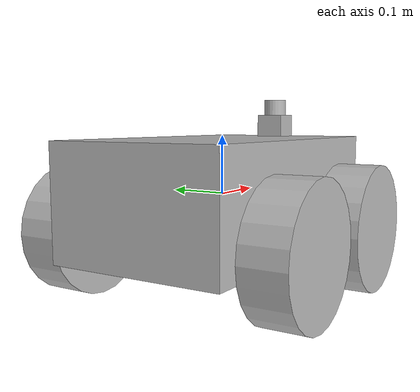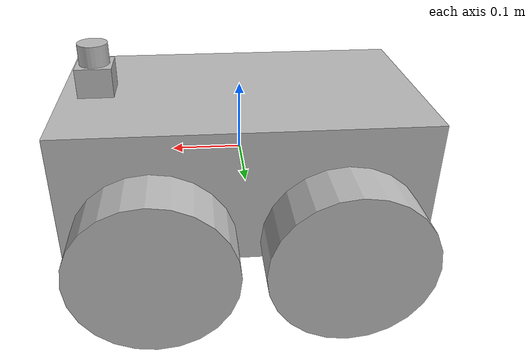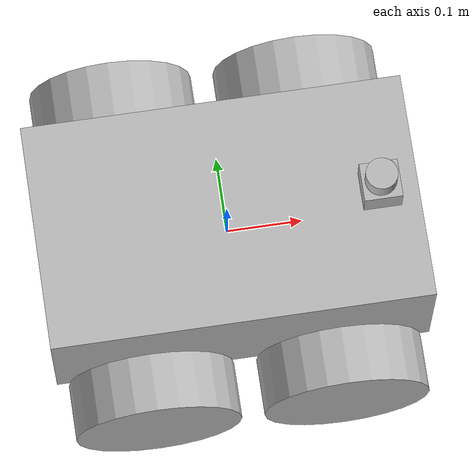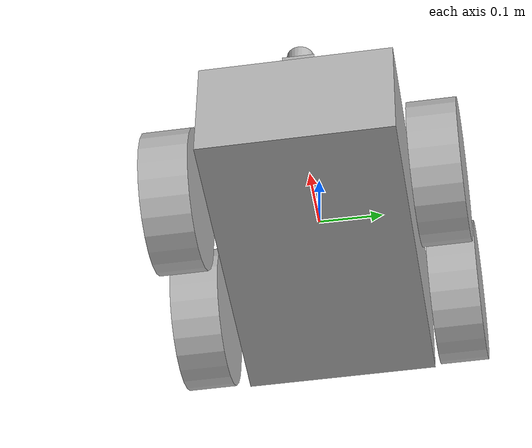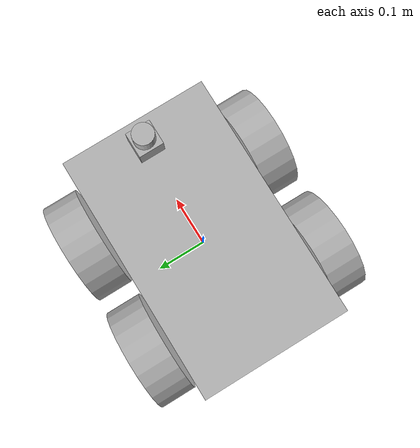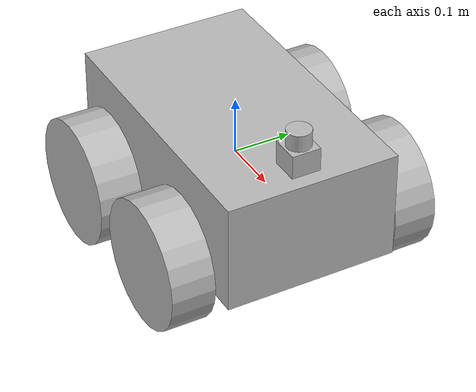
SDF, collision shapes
<?xml version='1.0'?>
<sdf version='1.6'>
  <model name='pioneer3at'>
    <link name='chassis'>
      <inertial>
        <mass>14</mass>
        <inertia>
          <ixx>0.147117</ixx>
          <ixy>0</ixy>
          <ixz>0</ixz>
          <iyy>0.334951</iyy>
          <iyz>0</iyz>
          <izz>0.397834</izz>
        </inertia>
      </inertial>
      <self_collide>0</self_collide>
      <enable_wind>0</enable_wind>
      <kinematic>0</kinematic>
      <pose frame=''>0 0 0 0 -0 0</pose>
      <visual name='visual'>
        <geometry>
          <mesh>
            <uri>model://pioneer3at/meshes/chassis.dae</uri>
          </mesh>
        </geometry>
        <pose frame=''>0 0 0 0 -0 0</pose>
        <transparency>0</transparency>
        <cast_shadows>1</cast_shadows>
      </visual>
      <collision name='collision'>
        <laser_retro>0</laser_retro>
        <max_contacts>10</max_contacts>
        <pose frame=''>0 0 0 0 -0 0</pose>
        <geometry>
          <box>
            <size>0.501 0.3 0.19</size>
          </box>
        </geometry>
        <surface>
          <friction>
            <ode>
              <mu>1</mu>
              <mu2>1</mu2>
              <fdir1>0 0 0</fdir1>
              <slip1>0</slip1>
              <slip2>0</slip2>
            </ode>
            <torsional>
              <coefficient>1</coefficient>
              <patch_radius>0</patch_radius>
              <surface_radius>0</surface_radius>
              <use_patch_radius>1</use_patch_radius>
              <ode>
                <slip>0</slip>
              </ode>
            </torsional>
          </friction>
          <bounce>
            <restitution_coefficient>0</restitution_coefficient>
            <threshold>1e+06</threshold>
          </bounce>
          <contact>
            <collide_without_contact>0</collide_without_contact>
            <collide_without_contact_bitmask>1</collide_without_contact_bitmask>
            <collide_bitmask>1</collide_bitmask>
            <ode>
              <soft_cfm>0</soft_cfm>
              <soft_erp>0.2</soft_erp>
              <kp>1e+13</kp>
              <kd>1</kd>
              <max_vel>0.01</max_vel>
              <min_depth>0</min_depth>
            </ode>
            <bullet>
              <split_impulse>1</split_impulse>
              <split_impulse_penetration_threshold>-0.01</split_impulse_penetration_threshold>
              <soft_cfm>0</soft_cfm>
              <soft_erp>0.2</soft_erp>
              <kp>1e+13</kp>
              <kd>1</kd>
            </bullet>
          </contact>
        </surface>
      </collision>
    </link>
    <link name='left_front_wheel'>
      <pose frame=''>0.125 0.201 -0.06 1.5707 -0 0</pose>
      <inertial>
        <mass>1.5</mass>
        <inertia>
          <ixx>0.00524062</ixx>
          <iyy>0.00524062</iyy>
          <izz>0.009075</izz>
          <ixy>0</ixy>
          <ixz>0</ixz>
          <iyz>0</iyz>
        </inertia>
      </inertial>
      <self_collide>0</self_collide>
      <enable_wind>0</enable_wind>
      <kinematic>0</kinematic>
      <visual name='visual'>
        <geometry>
          <mesh>
            <uri>model://pioneer3at/meshes/wheel.dae</uri>
          </mesh>
        </geometry>
        <pose frame=''>0 0 0 0 -0 0</pose>
        <transparency>0</transparency>
        <cast_shadows>1</cast_shadows>
      </visual>
      <collision name='collision'>
        <laser_retro>0</laser_retro>
        <max_contacts>10</max_contacts>
        <pose frame=''>0 0 0 0 -0 0</pose>
        <geometry>
          <cylinder>
            <radius>0.11</radius>
            <length>0.075</length>
          </cylinder>
        </geometry>
        <surface>
          <friction>
            <ode>
              <mu>1</mu>
              <mu2>1</mu2>
              <fdir1>0 0 0</fdir1>
              <slip1>0.5</slip1>
              <slip2>0</slip2>
            </ode>
            <torsional>
              <coefficient>1</coefficient>
              <patch_radius>0</patch_radius>
              <surface_radius>0</surface_radius>
              <use_patch_radius>1</use_patch_radius>
              <ode>
                <slip>0</slip>
              </ode>
            </torsional>
          </friction>
          <bounce>
            <restitution_coefficient>0</restitution_coefficient>
            <threshold>1e+06</threshold>
          </bounce>
          <contact>
            <collide_without_contact>0</collide_without_contact>
            <collide_without_contact_bitmask>1</collide_without_contact_bitmask>
            <collide_bitmask>1</collide_bitmask>
            <ode>
              <soft_cfm>0</soft_cfm>
              <soft_erp>0.2</soft_erp>
              <kp>1e+13</kp>
              <kd>1</kd>
              <max_vel>0.01</max_vel>
              <min_depth>0</min_depth>
            </ode>
            <bullet>
              <split_impulse>1</split_impulse>
              <split_impulse_penetration_threshold>-0.01</split_impulse_penetration_threshold>
              <soft_cfm>0</soft_cfm>
              <soft_erp>0.2</soft_erp>
              <kp>1e+13</kp>
              <kd>1</kd>
            </bullet>
          </contact>
        </surface>
      </collision>
    </link>
    <link name='left_rear_wheel'>
      <pose frame=''>-0.125 0.201 -0.06 1.5707 -0 0</pose>
      <inertial>
        <mass>1.5</mass>
        <inertia>
          <ixx>0.00524062</ixx>
          <iyy>0.00524062</iyy>
          <izz>0.009075</izz>
          <ixy>0</ixy>
          <ixz>0</ixz>
          <iyz>0</iyz>
        </inertia>
      </inertial>
      <self_collide>0</self_collide>
      <enable_wind>0</enable_wind>
      <kinematic>0</kinematic>
      <visual name='visual'>
        <geometry>
          <mesh>
            <uri>model://pioneer3at/meshes/wheel.dae</uri>
          </mesh>
        </geometry>
        <pose frame=''>0 0 0 0 -0 0</pose>
        <transparency>0</transparency>
        <cast_shadows>1</cast_shadows>
      </visual>
      <collision name='collision'>
        <laser_retro>0</laser_retro>
        <max_contacts>10</max_contacts>
        <pose frame=''>0 0 0 0 -0 0</pose>
        <geometry>
          <cylinder>
            <radius>0.11</radius>
            <length>0.075</length>
          </cylinder>
        </geometry>
        <surface>
          <friction>
            <ode>
              <mu>1</mu>
              <mu2>1</mu2>
              <fdir1>0 0 0</fdir1>
              <slip1>0.5</slip1>
              <slip2>0</slip2>
            </ode>
            <torsional>
              <coefficient>1</coefficient>
              <patch_radius>0</patch_radius>
              <surface_radius>0</surface_radius>
              <use_patch_radius>1</use_patch_radius>
              <ode>
                <slip>0</slip>
              </ode>
            </torsional>
          </friction>
          <bounce>
            <restitution_coefficient>0</restitution_coefficient>
            <threshold>1e+06</threshold>
          </bounce>
          <contact>
            <collide_without_contact>0</collide_without_contact>
            <collide_without_contact_bitmask>1</collide_without_contact_bitmask>
            <collide_bitmask>1</collide_bitmask>
            <ode>
              <soft_cfm>0</soft_cfm>
              <soft_erp>0.2</soft_erp>
              <kp>1e+13</kp>
              <kd>1</kd>
              <max_vel>0.01</max_vel>
              <min_depth>0</min_depth>
            </ode>
            <bullet>
              <split_impulse>1</split_impulse>
              <split_impulse_penetration_threshold>-0.01</split_impulse_penetration_threshold>
              <soft_cfm>0</soft_cfm>
              <soft_erp>0.2</soft_erp>
              <kp>1e+13</kp>
              <kd>1</kd>
            </bullet>
          </contact>
        </surface>
      </collision>
    </link>
    <link name='right_front_wheel'>
      <pose frame=''>0.125 -0.201 -0.06 1.5707 -0 0</pose>
      <inertial>
        <mass>1.5</mass>
        <inertia>
          <ixx>0.00524062</ixx>
          <iyy>0.00524062</iyy>
          <izz>0.009075</izz>
          <ixy>0</ixy>
          <ixz>0</ixz>
          <iyz>0</iyz>
        </inertia>
      </inertial>
      <self_collide>0</self_collide>
      <enable_wind>0</enable_wind>
      <kinematic>0</kinematic>
      <visual name='visual'>
        <geometry>
          <mesh>
            <uri>model://pioneer3at/meshes/wheel.dae</uri>
          </mesh>
        </geometry>
        <pose frame=''>0 0 0 0 -0 0</pose>
        <transparency>0</transparency>
        <cast_shadows>1</cast_shadows>
      </visual>
      <collision name='collision'>
        <laser_retro>0</laser_retro>
        <max_contacts>10</max_contacts>
        <pose frame=''>0 0 0 0 -0 0</pose>
        <geometry>
          <cylinder>
            <radius>0.11</radius>
            <length>0.075</length>
          </cylinder>
        </geometry>
        <surface>
          <friction>
            <ode>
              <mu>1</mu>
              <mu2>1</mu2>
              <fdir1>0 0 0</fdir1>
              <slip1>0.5</slip1>
              <slip2>0</slip2>
            </ode>
            <torsional>
              <coefficient>1</coefficient>
              <patch_radius>0</patch_radius>
              <surface_radius>0</surface_radius>
              <use_patch_radius>1</use_patch_radius>
              <ode>
                <slip>0</slip>
              </ode>
            </torsional>
          </friction>
          <bounce>
            <restitution_coefficient>0</restitution_coefficient>
            <threshold>1e+06</threshold>
          </bounce>
          <contact>
            <collide_without_contact>0</collide_without_contact>
            <collide_without_contact_bitmask>1</collide_without_contact_bitmask>
            <collide_bitmask>1</collide_bitmask>
            <ode>
              <soft_cfm>0</soft_cfm>
              <soft_erp>0.2</soft_erp>
              <kp>1e+13</kp>
              <kd>1</kd>
              <max_vel>0.01</max_vel>
              <min_depth>0</min_depth>
            </ode>
            <bullet>
              <split_impulse>1</split_impulse>
              <split_impulse_penetration_threshold>-0.01</split_impulse_penetration_threshold>
              <soft_cfm>0</soft_cfm>
              <soft_erp>0.2</soft_erp>
              <kp>1e+13</kp>
              <kd>1</kd>
            </bullet>
          </contact>
        </surface>
      </collision>
    </link>
    <link name='right_rear_wheel'>
      <pose frame=''>-0.125 -0.201 -0.06 1.5707 -0 0</pose>
      <inertial>
        <mass>1.5</mass>
        <inertia>
          <ixx>0.00524062</ixx>
          <iyy>0.00524062</iyy>
          <izz>0.009075</izz>
          <ixy>0</ixy>
          <ixz>0</ixz>
          <iyz>0</iyz>
        </inertia>
      </inertial>
      <self_collide>0</self_collide>
      <enable_wind>0</enable_wind>
      <kinematic>0</kinematic>
      <visual name='visual'>
        <geometry>
          <mesh>
            <uri>model://pioneer3at/meshes/wheel.dae</uri>
          </mesh>
        </geometry>
        <pose frame=''>0 0 0 0 -0 0</pose>
        <transparency>0</transparency>
        <cast_shadows>1</cast_shadows>
      </visual>
      <collision name='collision'>
        <laser_retro>0</laser_retro>
        <max_contacts>10</max_contacts>
        <pose frame=''>0 0 0 0 -0 0</pose>
        <geometry>
          <cylinder>
            <radius>0.11</radius>
            <length>0.075</length>
          </cylinder>
        </geometry>
        <surface>
          <friction>
            <ode>
              <mu>1</mu>
              <mu2>1</mu2>
              <fdir1>0 0 0</fdir1>
              <slip1>0.5</slip1>
              <slip2>0</slip2>
            </ode>
            <torsional>
              <coefficient>1</coefficient>
              <patch_radius>0</patch_radius>
              <surface_radius>0</surface_radius>
              <use_patch_radius>1</use_patch_radius>
              <ode>
                <slip>0</slip>
              </ode>
            </torsional>
          </friction>
          <bounce>
            <restitution_coefficient>0</restitution_coefficient>
            <threshold>1e+06</threshold>
          </bounce>
          <contact>
            <collide_without_contact>0</collide_without_contact>
            <collide_without_contact_bitmask>1</collide_without_contact_bitmask>
            <collide_bitmask>1</collide_bitmask>
            <ode>
              <soft_cfm>0</soft_cfm>
              <soft_erp>0.2</soft_erp>
              <kp>1e+13</kp>
              <kd>1</kd>
              <max_vel>0.01</max_vel>
              <min_depth>0</min_depth>
            </ode>
            <bullet>
              <split_impulse>1</split_impulse>
              <split_impulse_penetration_threshold>-0.01</split_impulse_penetration_threshold>
              <soft_cfm>0</soft_cfm>
              <soft_erp>0.2</soft_erp>
              <kp>1e+13</kp>
              <kd>1</kd>
            </bullet>
          </contact>
        </surface>
      </collision>
    </link>
    <joint name='left_front' type='revolute'>
      <parent>chassis</parent>
      <child>left_front_wheel</child>
      <pose frame=''>0 0 0 0 -0 0</pose>
      <axis>
        <xyz>0 1 0</xyz>
        <use_parent_model_frame>1</use_parent_model_frame>
        <limit>
          <lower>-1e+16</lower>
          <upper>1e+16</upper>
          <effort>-1</effort>
          <velocity>-1</velocity>
        </limit>
        <dynamics>
          <spring_reference>0</spring_reference>
          <spring_stiffness>0</spring_stiffness>
          <damping>0</damping>
          <friction>0</friction>
        </dynamics>
      </axis>
      <physics>
        <ode>
          <limit>
            <cfm>0</cfm>
            <erp>0.2</erp>
          </limit>
          <suspension>
            <cfm>0</cfm>
            <erp>0.2</erp>
          </suspension>
        </ode>
      </physics>
    </joint>
    <joint name='left_rear' type='revolute'>
      <parent>chassis</parent>
      <child>left_rear_wheel</child>
      <pose frame=''>0 0 0 0 -0 0</pose>
      <axis>
        <xyz>0 1 0</xyz>
        <use_parent_model_frame>1</use_parent_model_frame>
        <limit>
          <lower>-1e+16</lower>
          <upper>1e+16</upper>
          <effort>-1</effort>
          <velocity>-1</velocity>
        </limit>
        <dynamics>
          <spring_reference>0</spring_reference>
          <spring_stiffness>0</spring_stiffness>
          <damping>0</damping>
          <friction>0</friction>
        </dynamics>
      </axis>
      <physics>
        <ode>
          <limit>
            <cfm>0</cfm>
            <erp>0.2</erp>
          </limit>
          <suspension>
            <cfm>0</cfm>
            <erp>0.2</erp>
          </suspension>
        </ode>
      </physics>
    </joint>
    <joint name='right_front' type='revolute'>
      <parent>chassis</parent>
      <child>right_front_wheel</child>
      <pose frame=''>0 0 0 0 -0 0</pose>
      <axis>
        <xyz>0 1 0</xyz>
        <use_parent_model_frame>1</use_parent_model_frame>
        <limit>
          <lower>-1e+16</lower>
          <upper>1e+16</upper>
          <effort>-1</effort>
          <velocity>-1</velocity>
        </limit>
        <dynamics>
          <spring_reference>0</spring_reference>
          <spring_stiffness>0</spring_stiffness>
          <damping>0</damping>
          <friction>0</friction>
        </dynamics>
      </axis>
      <physics>
        <ode>
          <limit>
            <cfm>0</cfm>
            <erp>0.2</erp>
          </limit>
          <suspension>
            <cfm>0</cfm>
            <erp>0.2</erp>
          </suspension>
        </ode>
      </physics>
    </joint>
    <joint name='right_rear' type='revolute'>
      <parent>chassis</parent>
      <child>right_rear_wheel</child>
      <pose frame=''>0 0 0 0 -0 0</pose>
      <axis>
        <xyz>0 1 0</xyz>
        <use_parent_model_frame>1</use_parent_model_frame>
        <limit>
          <lower>-1e+16</lower>
          <upper>1e+16</upper>
          <effort>-1</effort>
          <velocity>-1</velocity>
        </limit>
        <dynamics>
          <spring_reference>0</spring_reference>
          <spring_stiffness>0</spring_stiffness>
          <damping>0</damping>
          <friction>0</friction>
        </dynamics>
      </axis>
      <physics>
        <ode>
          <limit>
            <cfm>0</cfm>
            <erp>0.2</erp>
          </limit>
          <suspension>
            <cfm>0</cfm>
            <erp>0.2</erp>
          </suspension>
        </ode>
      </physics>
    </joint>

    <include>
      <uri>model://hokuyo</uri>
      <pose>0.2 0 0.13 0 0 0</pose>
    </include>

    <joint name="hokuyo_joint" type="revolute">
      <child>hokuyo::link</child>
      <parent>chassis</parent>
      <axis>
        <xyz>0 0 1</xyz>
        <limit>
          <upper>0</upper>
          <lower>0</lower>
        </limit>
      </axis>
    </joint>

    <static>0</static>
    <allow_auto_disable>1</allow_auto_disable>
    <plugin name='SkidSteerDrivePlugin' filename='libSkidSteerDrivePlugin.so'>
      <right_front>right_front</right_front>
      <right_rear>right_rear</right_rear>
      <left_front>left_front</left_front>
      <left_rear>left_rear</left_rear>
    </plugin>
  </model>
</sdf>

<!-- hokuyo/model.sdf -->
<sdf version="1.5">
  <model name="hokuyo">
    <pose>0 0 0.035 0 0 0</pose>
    <link name="link">
      <inertial>
        <mass>0.1</mass>
      </inertial>
      <visual name="visual">
        <geometry>
          <mesh>
            <uri>model://../model_source/models/hokuyo/meshes/hokuyo.dae</uri>
          </mesh>
        </geometry>
      </visual>
      <collision name="collision-base">
        <pose>0 0 -0.0145 0 0 0</pose>
        <geometry>
          <box>
            <size>0.05 0.05 0.041</size>
          </box>
        </geometry>
      </collision>
      <collision name="collision-top">
        <pose>0 0 0.0205 0 0 0</pose>
        <geometry>
          <cylinder>
            <radius>0.021</radius>
            <length>0.029</length>
          </cylinder>
        </geometry>
      </collision>
      <sensor name="laser" type="ray">
        <pose>0.01 0 0.0175 0 -0 0</pose>
        <ray>
          <scan>
            <horizontal>
              <samples>640</samples>
              <resolution>1</resolution>
              <min_angle>-2.26889</min_angle>
              <max_angle>2.268899</max_angle>
            </horizontal>
          </scan>
          <range>
            <min>0.08</min>
            <max>10</max>
            <resolution>0.01</resolution>
          </range>
        </ray>
        <plugin name="laser" filename="libRayPlugin.so" />
        <always_on>1</always_on>
        <update_rate>30</update_rate>
        <visualize>true</visualize>
      </sensor>
    </link>
  </model>
</sdf>
